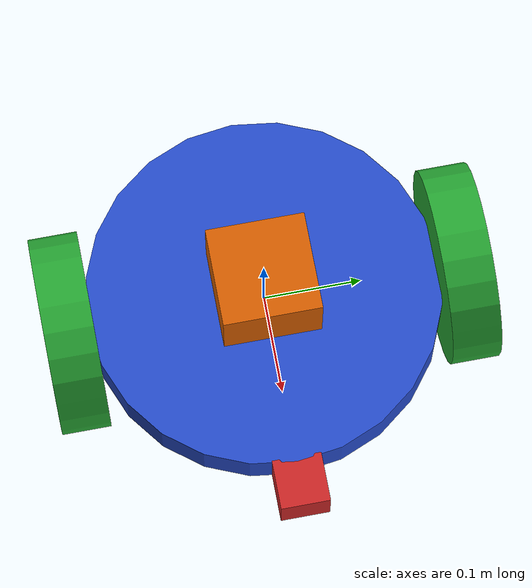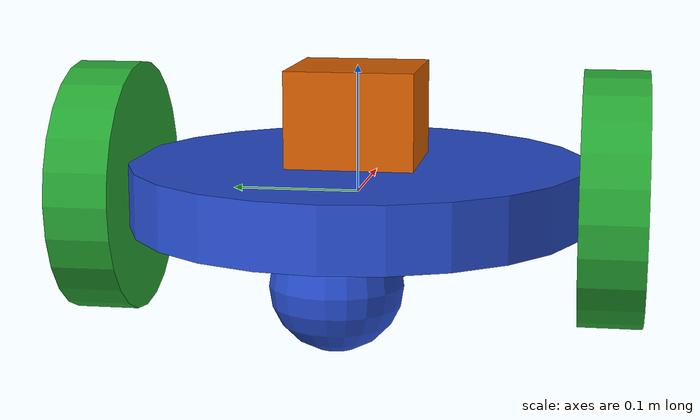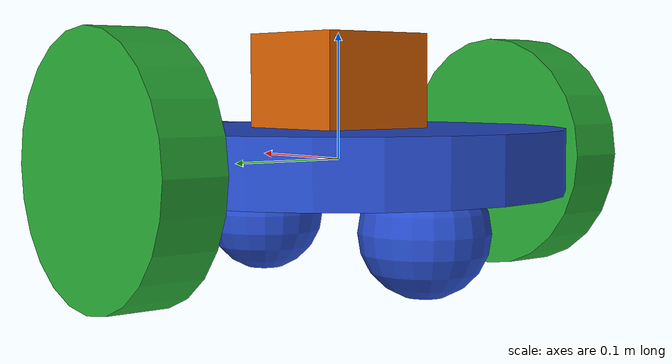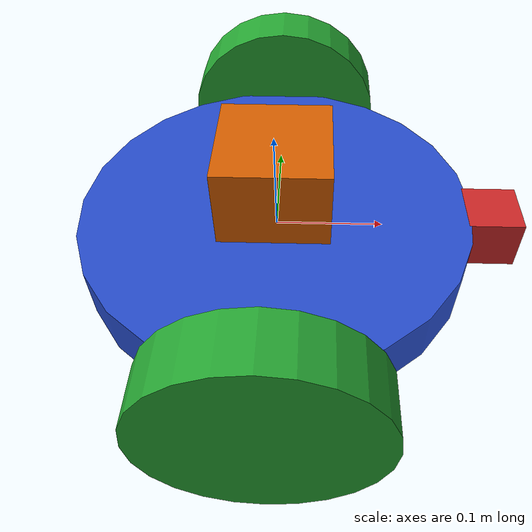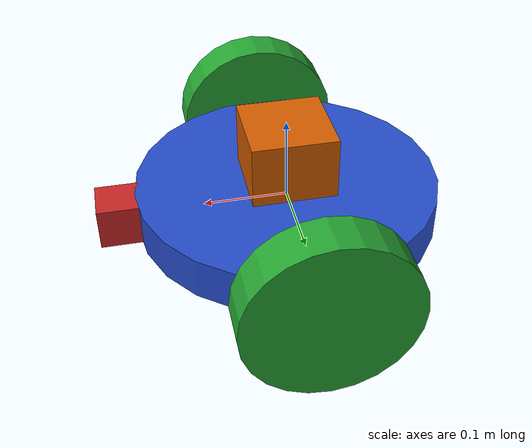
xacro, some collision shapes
<?xml version='1.0'?>

<robot name="slam_bot" xmlns:xacro="http://www.ros.org/wiki/xacro">
  <xacro:include filename="$(find slam_project)/urdf/slam_bot.gazebo" />

  <link name="robot_footprint"></link>

  <joint name="robot_footprint_joint" type="fixed">
    <origin xyz="0 0 0" rpy="0 0 0" />
    <parent link="robot_footprint"/>
    <child link="chassis" />
  </joint>

  <joint type="continuous" name="left_wheel_hinge">
    <origin xyz="0 0.2 0" rpy="0 0 0"/>
    <child link="left_wheel"/>
    <parent link="chassis"/>
    <axis xyz="0 1 0" rpy="0 0 0"/>
    <limit effort="10000" velocity="1000"/>
    <dynamics damping="1.0" friction="1.0"/>
  </joint>

  <joint type="continuous" name="right_wheel_hinge">
    <origin xyz="0 -0.2 0" rpy="0 0 0"/>
    <child link="right_wheel"/>
    <parent link="chassis"/>
    <axis xyz="0 1 0" rpy="0 0 0"/>
    <limit effort="10000" velocity="1000"/>
    <dynamics damping="1.0" friction="1.0"/>
  </joint>

  <joint type="fixed" name="camera_joint">
    <origin xyz="0.2 0 0" rpy="0 0 0"/>
    <child link="camera"/>
    <parent link="chassis"/>
  </joint>

  <joint type="fixed" name="hokuyo_joint">
    <origin xyz="0 0 0.05" rpy="0 0 0"/>
    <child link="hokuyo"/>
    <parent link="chassis"/>
  </joint>

  <link name='left_wheel'>

    <inertial>
      <mass value="5.0"/>
      <origin xyz="0 0 0" rpy="0 1.5707 1.5707"/>
      <inertia
          ixx="0.1" ixy="0" ixz="0"
          iyy="0.1" iyz="0"
          izz="0.1"
     />
    </inertial>

    <collision>
      <origin xyz="0 0 0" rpy=" 0 1.5707 1.5707"/>
      <geometry>
        <cylinder radius="0.1" length="0.05"/>
      </geometry>
    </collision>

    <visual>
      <origin xyz="0 0 0" rpy="0 1.5707 1.5707"/>
      <geometry>
        <cylinder radius="0.1" length="0.05"/>
      </geometry>
    </visual>

  </link>

  <link name='right_wheel'>

    <inertial>
      <mass value="5.0"/>
      <origin xyz="0 0 0" rpy="0 1.5707 1.5707"/>
      <inertia
          ixx="0.1" ixy="0" ixz="0"
          iyy="0.1" iyz="0"
          izz="0.1"
     />
    </inertial>

    <collision>
      <origin xyz="0 0 0" rpy=" 0 1.5707 1.5707"/>
      <geometry>
        <cylinder radius="0.1" length="0.05"/>
      </geometry>
    </collision>

    <visual>
      <origin xyz="0 0 0" rpy="0 1.5707 1.5707"/>
      <geometry>
        <cylinder radius="0.1" length="0.05"/>
      </geometry>
    </visual>

  </link>

  <link name='camera'>

    <inertial>
      <mass value="0.1"/>
      <origin xyz="0 0 0" rpy="0 0 0"/>
      <inertia
          ixx="1e-6" ixy="0" ixz="0"
          iyy="1e-6" iyz="0"
          izz="1e-6"
     />
    </inertial>

    <collision>
      <origin xyz="0 0 0" rpy="0 0 0"/>
      <geometry>
        <box size=".05 .05 .05"/>
      </geometry>
    </collision>

    <visual>
      <origin xyz="0 0 0" rpy="0 0 0"/>
      <geometry>
        <box size=".05 .05 .05"/>
      </geometry>
    </visual>

  </link>

  <link name="camera_rgbd_frame"></link>

  <joint name="camera_rgbd_joint" type="fixed">
    <origin xyz="0 0 0" rpy="-${pi/2} 0 -${pi/2}"/>
    <parent link="camera"/>
    <child link="camera_rgbd_frame"/>
  </joint>

  <link name='hokuyo'>

    <inertial>
      <mass value="0.1"/>
      <origin xyz="0 0 0" rpy="0 0 0"/>
      <inertia
          ixx="1e-6" ixy="0" ixz="0"
          iyy="1e-6" iyz="0"
          izz="1e-6"
     />
    </inertial>

    <collision>
      <origin xyz="0 0 0" rpy="0 0 0"/>
      <geometry>
        <box size=".1 .1 .1"/>
      </geometry>
    </collision>

    <visual>
      <origin xyz="0 0 0" rpy="0 0 0"/>
      <geometry>
        <mesh filename="package://slam_project/meshes/hokuyo.dae"/>
      </geometry>
    </visual>

  </link>

  <link name='chassis'>
    <pose>0 0 0.1 0 0 0</pose>

    <inertial>
      <mass value="15.0"/>
      <origin xyz="0.0 0 0" rpy=" 0 0 0"/>
      <inertia
          ixx="0.1" ixy="0" ixz="0"
          iyy="0.1" iyz="0"
          izz="0.1"
      />
    </inertial>

    <collision name='collision'>
      <origin xyz="0 0 0" rpy=" 0 0 0"/>
      <geometry>
        <cylinder radius="0.18" length="0.05"/>
      </geometry>
    </collision>

    <visual name='chassis_visual'>
      <origin xyz="0 0 0" rpy=" 0 0 0"/>
      <geometry>
        <cylinder radius="0.18" length="0.05"/>
      </geometry>
    </visual>

    <collision name='back_caster_collision'>
      <origin xyz="-0.1 0 -0.05" rpy=" 0 0 0"/>
      <geometry>
        <sphere radius="0.0499"/>
      </geometry>
    </collision>

    <visual name='back_caster_visual'>
      <origin xyz="-0.1 0 -0.05" rpy=" 0 0 0"/>
      <geometry>
        <sphere radius="0.05"/>
      </geometry>
    </visual>

    <collision name='front_caster_collision'>
      <origin xyz="0.1 0 -0.05" rpy=" 0 0 0"/>
      <geometry>
        <sphere radius="0.0499"/>
      </geometry>
    </collision>

    <visual name='front_caster_visual'>
      <origin xyz="0.1 0 -0.05" rpy=" 0 0 0"/>
      <geometry>
        <sphere radius="0.05"/>
      </geometry>
    </visual>

  </link>

</robot>
